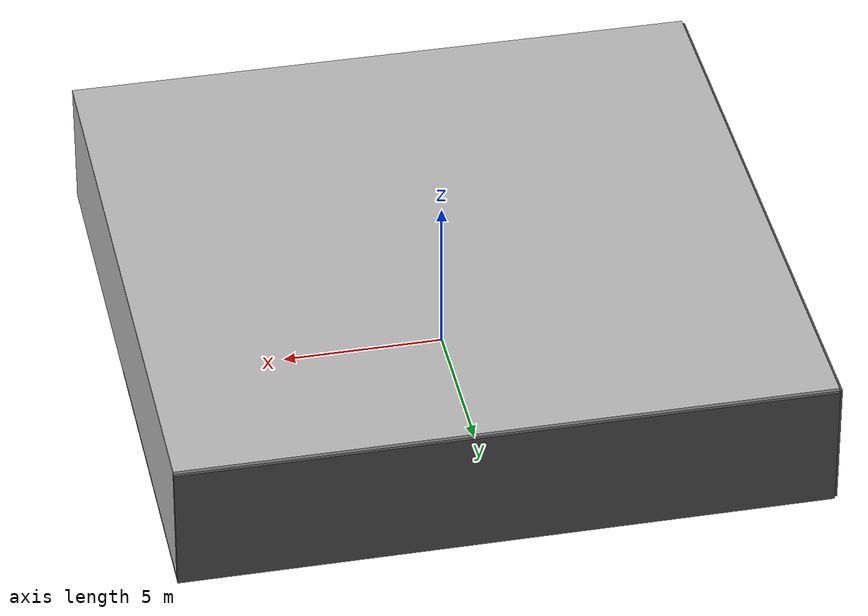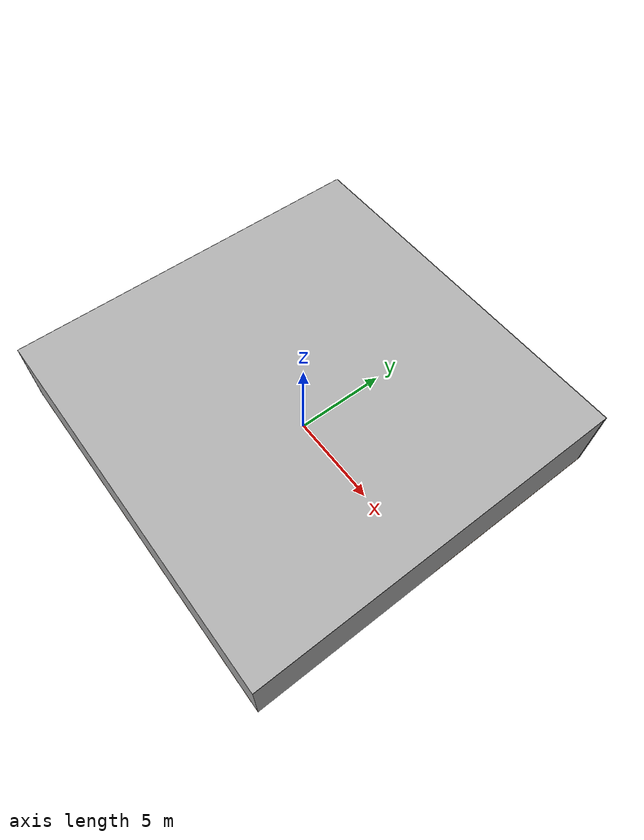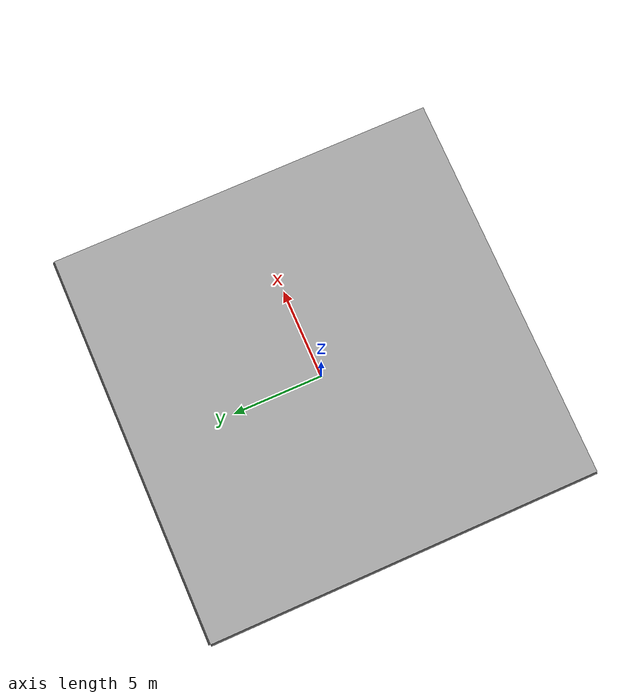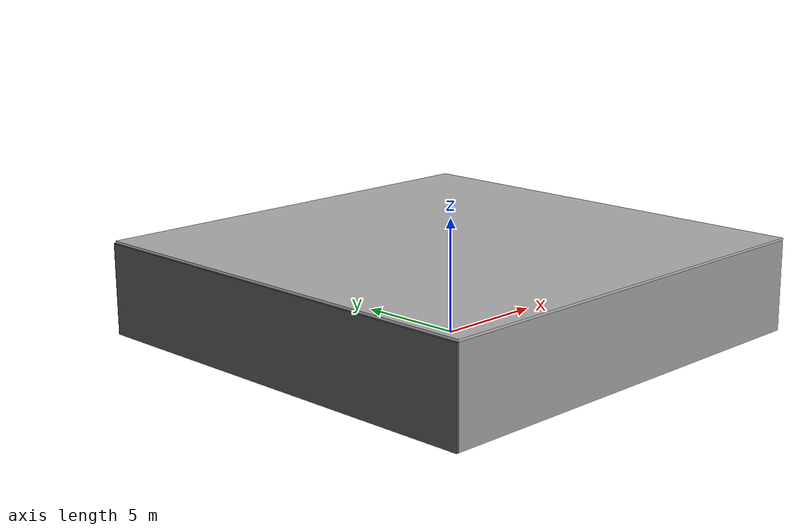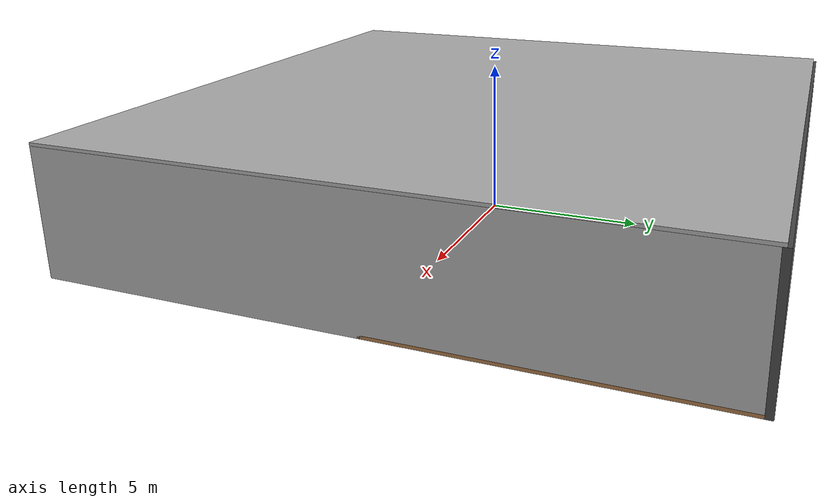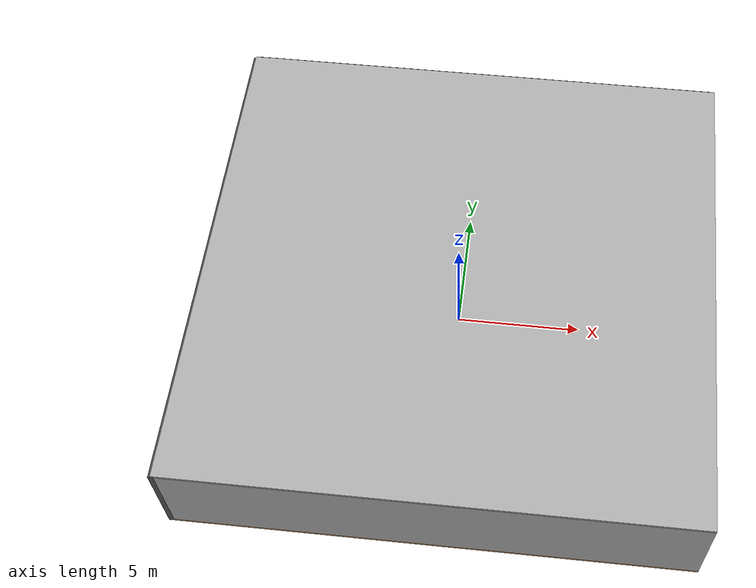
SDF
<sdf version="1.4">
 <world name="default">
  <physics type="ode">
   <max_step_size>0.001</max_step_size>
   <real_time_factor>1</real_time_factor>
   <real_time_update_rate>1000</real_time_update_rate>
   <gravity>0 0 -9.8</gravity>
  </physics>
  <scene><ambient>0.4 0.4 0.4 1</ambient><background>0.7 0.7 0.7 1</background><shadows>1</shadows></scene>
  <model name="Surrounding">
   <static>1</static>
   <link name="Ceiling">
    <collision name="Ceiling_Collision"><geometry><box><size>20 20 0.1</size></box></geometry></collision>
    <visual name="Ceiling_Visual">
     <geometry><box><size>20 20 0.1</size></box></geometry>
     <material>
      <script><uri>file://media/materials/scripts/gazebo.material</uri><name>Gazebo/JointAnchor</name></script>
     </material>
    </visual>
    <pose>0 0 4.05 0 0 0</pose>
   </link>
   <link name="Wall_South">
    <collision name="Wall_South_Collision">
     <geometry><box><size>20 0 4</size></box></geometry>
     <pose>0 0 2 0 -0 0</pose>
    </collision>
    <visual name="Wall_South_Visual">
     <pose>0 0 2 0 -0 0</pose>
     <geometry><box><size>20 0 4</size></box></geometry>
     <material>
      <script><uri>file://media/materials/scripts/gazebo.material</uri><name>Gazebo/GreyGradientSky</name></script>
     </material>
    </visual>
    <velocity_decay><linear>0</linear><angular>0</angular></velocity_decay>
    <pose>0 -10 0 0 -0 0</pose>
   </link>
   <link name="Wall_East">
    <collision name="Wall_21_Collision">
     <geometry><box><size>20 0 4</size></box></geometry>
     <pose>0 0 2 0 -0 0</pose>
    </collision>
    <visual name="Wall_21_Visual">
     <pose>0 0 2 0 -0 0</pose>
     <geometry><box><size>20 0 4</size></box></geometry>
     <material>
      <script><uri>file://media/materials/scripts/gazebo.material</uri><name>Gazebo/CloudySky</name></script>
     </material>
    </visual>
    <velocity_decay><linear>0</linear><angular>0</angular></velocity_decay>
    <pose>10 0 0 0 -0 1.5708</pose>
   </link>
   <link name="Wall_North">
    <collision name="Wall_22_Collision">
     <geometry><box><size>20 0.2 4</size></box></geometry>
     <pose>0 0 2 0 -0 0</pose>
    </collision>
    <visual name="Wall_22_Visual">
     <pose>0 0 2 0 -0 0</pose>
     <geometry><box><size>20 0.2 4</size></box></geometry>
     <material>
      <script><uri>file://media/materials/scripts/gazebo.material</uri><name>Gazebo/Road</name></script>
     </material>
    </visual>
    <velocity_decay><linear>0</linear><angular>0</angular></velocity_decay>
    <pose>0 10 0 0 -0 0</pose>
   </link>
   <link name="Wall_West">
    <collision name="Wall_23_Collision">
     <geometry><box><size>20 0.2 4</size></box></geometry>
     <pose>0 0 2 0 -0 0</pose>
    </collision>
    <visual name="Wall_23_Visual">
     <pose>0 0 2 0 -0 0</pose>
     <geometry><box><size>20 0.2 4</size></box></geometry>
     <material>
      <script><uri>file://media/materials/scripts/gazebo.material</uri><name>Gazebo/Road</name></script>
     </material>
    </visual>
    <velocity_decay><linear>0</linear><angular>0</angular></velocity_decay>
    <pose>-10 0 0 0 0 -1.5708</pose>
   </link>
   <link name="Ground_link">
    <collision name="collision">
     <pose>0 0 .05 0 -0 0</pose>
     <geometry><box><size>20 20 0.1</size></box></geometry>
    </collision>
    <visual name="visual">
     <pose>0 0 .05 0 -0 0</pose>
     <geometry><box><size>20 20 0.1</size></box></geometry>
     <material>
      <script><uri>file://media/materials/scripts/gazebo.material</uri><name>Gazebo/WoodPallet</name></script>
     </material>
    </visual>
   </link>
   <static>1</static>
  </model>
  <spherical_coordinates>
   <surface_model>EARTH_WGS84</surface_model>
   <latitude_deg>0</latitude_deg>
   <longitude_deg>0</longitude_deg>
   <elevation>0</elevation>
   <heading_deg>0</heading_deg>
  </spherical_coordinates>
  <light name="lightball_0" type="diffuse">
   <diffuse>0.8 0.8 0.8 1</diffuse>
   <specular>0.2 0.2 0.2 1</specular>
   <attenuation>
    <range>100</range>
    <constant>0.7</constant>
    <linear>0.01</linear>
    <quadratic>0.001</quadratic>
   </attenuation>
   <direction>-0.5 0.1 -0.9</direction>
   <pose>4.08019401182 8.97578723901 0.636146452002 0 0 0</pose>
  </light>
  <light name="lightball_1" type="diffuse">
   <diffuse>0.8 0.8 0.8 1</diffuse>
   <specular>0.2 0.2 0.2 1</specular>
   <attenuation>
    <range>100</range>
    <constant>0.7</constant>
    <linear>0.01</linear>
    <quadratic>0.001</quadratic>
   </attenuation>
   <direction>-0.5 0.1 -0.9</direction>
   <pose>-8.81848937317 1.65155572006 1.57146043393 0 0 0</pose>
  </light>
  <light name="lightball_2" type="diffuse">
   <diffuse>0.8 0.8 0.8 1</diffuse>
   <specular>0.2 0.2 0.2 1</specular>
   <attenuation>
    <range>100</range>
    <constant>0.7</constant>
    <linear>0.01</linear>
    <quadratic>0.001</quadratic>
   </attenuation>
   <direction>-0.5 0.1 -0.9</direction>
   <pose>8.11431078261 9.27204631554 1.60065144255 0 0 0</pose>
  </light>
  <light name="lightball_3" type="diffuse">
   <diffuse>0.8 0.8 0.8 1</diffuse>
   <specular>0.2 0.2 0.2 1</specular>
   <attenuation>
    <range>100</range>
    <constant>0.7</constant>
    <linear>0.01</linear>
    <quadratic>0.001</quadratic>
   </attenuation>
   <direction>-0.5 0.1 -0.9</direction>
   <pose>9.68934638765 -7.57036128535 2.04335638178 0 0 0</pose>
  </light>
  <light name="lightball_4" type="diffuse">
   <diffuse>0.8 0.8 0.8 1</diffuse>
   <specular>0.2 0.2 0.2 1</specular>
   <attenuation>
    <range>100</range>
    <constant>0.7</constant>
    <linear>0.01</linear>
    <quadratic>0.001</quadratic>
   </attenuation>
   <direction>-0.5 0.1 -0.9</direction>
   <pose>-5.31130191665 3.33928539394 1.96107371181 0 0 0</pose>
  </light>
  <light name="lightball_5" type="diffuse">
   <diffuse>0.8 0.8 0.8 1</diffuse>
   <specular>0.2 0.2 0.2 1</specular>
   <attenuation>
    <range>100</range>
    <constant>0.7</constant>
    <linear>0.01</linear>
    <quadratic>0.001</quadratic>
   </attenuation>
   <direction>-0.5 0.1 -0.9</direction>
   <pose>1.00473902137 -0.430186089786 1.36520727417 0 0 0</pose>
  </light>
  <light name="lightball_6" type="diffuse">
   <diffuse>0.8 0.8 0.8 1</diffuse>
   <specular>0.2 0.2 0.2 1</specular>
   <attenuation>
    <range>100</range>
    <constant>0.7</constant>
    <linear>0.01</linear>
    <quadratic>0.001</quadratic>
   </attenuation>
   <direction>-0.5 0.1 -0.9</direction>
   <pose>-4.34697884499 -3.11544205527 3.18490376579 0 0 0</pose>
  </light>
  <light name="lightball_7" type="diffuse">
   <diffuse>0.8 0.8 0.8 1</diffuse>
   <specular>0.2 0.2 0.2 1</specular>
   <attenuation>
    <range>100</range>
    <constant>0.7</constant>
    <linear>0.01</linear>
    <quadratic>0.001</quadratic>
   </attenuation>
   <direction>-0.5 0.1 -0.9</direction>
   <pose>-2.54446920538 4.35021330369 1.85568887762 0 0 0</pose>
  </light>
  <light name="lightball_8" type="diffuse">
   <diffuse>0.8 0.8 0.8 1</diffuse>
   <specular>0.2 0.2 0.2 1</specular>
   <attenuation>
    <range>100</range>
    <constant>0.7</constant>
    <linear>0.01</linear>
    <quadratic>0.001</quadratic>
   </attenuation>
   <direction>-0.5 0.1 -0.9</direction>
   <pose>-8.06395197527 2.34090233604 1.3737534822 0 0 0</pose>
  </light>
  <light name="lightball_9" type="diffuse">
   <diffuse>0.8 0.8 0.8 1</diffuse>
   <specular>0.2 0.2 0.2 1</specular>
   <attenuation>
    <range>100</range>
    <constant>0.7</constant>
    <linear>0.01</linear>
    <quadratic>0.001</quadratic>
   </attenuation>
   <direction>-0.5 0.1 -0.9</direction>
   <pose>-1.5153428079 5.28368331296 2.36147956115 0 0 0</pose>
  </light>
  <light name="lightball_10" type="diffuse">
   <diffuse>0.8 0.8 0.8 1</diffuse>
   <specular>0.2 0.2 0.2 1</specular>
   <attenuation>
    <range>100</range>
    <constant>0.7</constant>
    <linear>0.01</linear>
    <quadratic>0.001</quadratic>
   </attenuation>
   <direction>-0.5 0.1 -0.9</direction>
   <pose>-7.70621792292 -9.26572748076 1.75031553047 0 0 0</pose>
  </light>
  <light name="lightball_11" type="diffuse">
   <diffuse>0.8 0.8 0.8 1</diffuse>
   <specular>0.2 0.2 0.2 1</specular>
   <attenuation>
    <range>100</range>
    <constant>0.7</constant>
    <linear>0.01</linear>
    <quadratic>0.001</quadratic>
   </attenuation>
   <direction>-0.5 0.1 -0.9</direction>
   <pose>-2.08842320179 4.85338940854 2.28468645555 0 0 0</pose>
  </light>
  <light name="lightball_12" type="diffuse">
   <diffuse>0.8 0.8 0.8 1</diffuse>
   <specular>0.2 0.2 0.2 1</specular>
   <attenuation>
    <range>100</range>
    <constant>0.7</constant>
    <linear>0.01</linear>
    <quadratic>0.001</quadratic>
   </attenuation>
   <direction>-0.5 0.1 -0.9</direction>
   <pose>-2.43611010272 5.86788000685 1.12666445354 0 0 0</pose>
  </light>
  <include>
   <uri>model://robocup_3Dsim_goal</uri>
   <pose>0.53957762191 -7.96426523246 0 0 0 1.63026932499</pose>
  </include>
  <include><uri>model://table</uri><pose>5.49678685826 -5.08917392867 0 0 0 2.12137695484</pose></include>
  <include>
   <uri>model://robocup_3Dsim_goal</uri>
   <pose>4.81651949481 -1.14237599146 0 0 0 0.524576936696</pose>
  </include>
  <include>
   <uri>model://textured_shapes</uri>
   <pose>4.92636595845 3.35608890452 0 0 0 0.0329941148512</pose>
  </include>
 </world>
</sdf>

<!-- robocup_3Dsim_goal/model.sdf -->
<sdf version="1.5">
  <model name="robocup_3d_goal">
    <static>true</static>
    <link name="left_post">
      <pose>0 1.05 0.45 0 0 0</pose>
      <collision name="collision">
        <geometry>
          <cylinder>
            <radius>0.05</radius>
            <length>0.9</length>
          </cylinder>
        </geometry>
      </collision>
      <visual name="visual">
        <geometry>
          <cylinder>
            <radius>0.05</radius>
            <length>0.9</length>
          </cylinder>
        </geometry>
        <material>
          <script>
            <uri>file://media/materials/scripts/gazebo.material</uri>
            <name>Gazebo/ZincYellow</name>
          </script>
        </material>
      </visual>
    </link>
    <link name="left_support_horiz_lower">
      <pose>0.30 1.05 0.01 0 0 0</pose>
      <collision name="collision">
        <geometry>
          <box>
            <size>0.50 0.02 0.02</size>
          </box>
        </geometry>
      </collision>
      <visual name="visual">
        <geometry>
          <box>
            <size>0.50 0.02 0.02</size>
          </box>
        </geometry>
        <material>
          <script>
            <uri>file://media/materials/scripts/gazebo.material</uri>
            <name>Gazebo/White</name>
          </script>
        </material>
      </visual>
    </link>
    <link name="left_support_horiz_upper">
      <pose>0.30 1.05 0.79 0 0 0</pose>
      <collision name="collision">
        <geometry>
          <box>
            <size>0.50 0.02 0.02</size>
          </box>
        </geometry>
      </collision>
      <visual name="visual">
        <geometry>
          <box>
            <size>0.50 0.02 0.02</size>
          </box>
        </geometry>
        <material>
          <script>
            <uri>file://media/materials/scripts/gazebo.material</uri>
            <name>Gazebo/White</name>
          </script>
        </material>
      </visual>
    </link>
    <link name="left_support_vertical">
      <pose>0.56 1.05 0.4 0 1.5708 0</pose>
      <collision name="collision">
        <geometry>
          <box>
            <size>0.80 0.02 0.02</size>
          </box>
        </geometry>
      </collision>
      <visual name="visual">
        <geometry>
          <box>
            <size>0.80 0.02 0.02</size>
          </box>
        </geometry>
        <material>
          <script>
            <uri>file://media/materials/scripts/gazebo.material</uri>
            <name>Gazebo/White</name>
          </script>
        </material>
      </visual>
    </link>
    <link name="right_support_horiz_lower">
      <pose>0.30 -1.05 0.01 0 0 0</pose>
      <collision name="collision">
        <geometry>
          <box>
            <size>0.50 0.02 0.02</size>
          </box>
        </geometry>
      </collision>
      <visual name="visual">
        <geometry>
          <box>
            <size>0.50 0.02 0.02</size>
          </box>
        </geometry>
        <material>
          <script>
            <uri>file://media/materials/scripts/gazebo.material</uri>
            <name>Gazebo/White</name>
          </script>
        </material>
      </visual>
    </link>
    <link name="right_support_horiz_upper">
      <pose>0.30 -1.05 0.79 0 0 0</pose>
      <collision name="collision">
        <geometry>
          <box>
            <size>0.50 0.02 0.02</size>
          </box>
        </geometry>
      </collision>
      <visual name="visual">
        <geometry>
          <box>
            <size>0.50 0.02 0.02</size>
          </box>
        </geometry>
        <material>
          <script>
            <uri>file://media/materials/scripts/gazebo.material</uri>
            <name>Gazebo/White</name>
          </script>
        </material>
      </visual>
    </link>
    <link name="right_support_vertical">
      <pose>0.56 -1.05 0.4 0 1.5708 0</pose>
      <collision name="collision">
        <geometry>
          <box>
            <size>0.80 0.02 0.02</size>
          </box>
        </geometry>
      </collision>
      <visual name="visual">
        <geometry>
          <box>
            <size>0.80 0.02 0.02</size>
          </box>
        </geometry>
        <material>
          <script>
            <uri>file://media/materials/scripts/gazebo.material</uri>
            <name>Gazebo/White</name>
          </script>
        </material>
      </visual>
    </link>
    <link name="center_support_horiz_lower">
      <pose>0.56 0 0.01 0 1.5708 0</pose>
      <collision name="collision">
        <geometry>
          <box>
            <size>0.02 2.08 0.02</size>
          </box>
        </geometry>
      </collision>
      <visual name="visual">
        <geometry>
          <box>
            <size>0.02 2.08 0.02</size>
          </box>
        </geometry>
        <material>
          <script>
            <uri>file://media/materials/scripts/gazebo.material</uri>
            <name>Gazebo/White</name>
          </script>
        </material>
      </visual>
    </link>
    <link name="center_support_horiz_upper">
      <pose>0.56 0 0.79 0 1.5708 0</pose>
      <collision name="collision">
        <geometry>
          <box>
            <size>0.02 2.08 0.02</size>
          </box>
        </geometry>
      </collision>
      <visual name="visual">
        <geometry>
          <box>
            <size>0.02 2.08 0.02</size>
          </box>
        </geometry>
        <material>
          <script>
            <uri>file://media/materials/scripts/gazebo.material</uri>
            <name>Gazebo/White</name>
          </script>
        </material>
      </visual>
    </link>
    <link name="right_post">
      <pose>0 -1.05 0.45 0 0 0</pose>
      <collision name="collision">
        <geometry>
          <cylinder>
            <radius>0.05</radius>
            <length>0.9</length>
          </cylinder>
        </geometry>
      </collision>
      <visual name="visual">
        <geometry>
          <cylinder>
            <radius>0.05</radius>
            <length>0.9</length>
          </cylinder>
        </geometry>
        <material>
          <script>
            <uri>file://media/materials/scripts/gazebo.material</uri>
            <name>Gazebo/ZincYellow</name>
          </script>
        </material>
      </visual>
    </link>
    <link name="crossbar">
      <pose>0 0 0.85 1.57 1.57 0</pose>
      <collision name="collision">
        <geometry>
          <cylinder>
            <radius>0.05</radius>
            <length>2.0</length>
          </cylinder>
        </geometry>
      </collision>
      <visual name="visual">
        <geometry>
          <cylinder>
            <radius>0.05</radius>
            <length>2.0</length>
          </cylinder>
        </geometry>
        <material>
          <script>
            <uri>file://media/materials/scripts/gazebo.material</uri>
            <name>Gazebo/ZincYellow</name>
          </script>
        </material>
      </visual>
    </link>
    <link name="center_net">
      <pose>0.56 0 0.40 0 0 0</pose>
      <collision name="collision">
        <geometry>
          <box>
            <size>0.01 2.1 0.80</size>
          </box>
        </geometry>
      </collision>
      <visual name="visual">
        <geometry>
          <box>
            <size>0.01 2.1 0.80</size>
          </box>
        </geometry>
        <material>
          <script>
            <uri>model://../model_source/models/robocup09_spl_field/materials/scripts/</uri>
            <uri>model://../model_source/models/robocup09_spl_field/materials/textures/</uri>
            <name>RoboCup/Net</name>
          </script>
        </material>
      </visual>
    </link>
    <link name="left_net">
      <pose>0.30 1.05 0.40 0 0 0</pose>
      <collision name="collision">
        <geometry>
          <box>
            <size>0.50 0.01 0.76</size>
          </box>
        </geometry>
      </collision>
      <visual name="visual">
        <geometry>
          <box>
            <size>0.50 0.01 0.76</size>
          </box>
        </geometry>
        <material>
          <script>
            <uri>model://../model_source/models/robocup09_spl_field/materials/scripts/</uri>
            <uri>model://../model_source/models/robocup09_spl_field/materials/textures/</uri>
            <name>RoboCup/Net</name>
          </script>
        </material>
      </visual>
    </link>
    <link name="right_net">
      <pose>0.30 -1.05 0.40 0 0 0</pose>
      <collision name="collision">
        <geometry>
          <box>
            <size>0.50 0.01 0.76</size>
          </box>
        </geometry>
      </collision>
      <visual name="visual">
        <geometry>
          <box>
            <size>0.50 0.01 0.76</size>
          </box>
        </geometry>
        <material>
          <script>
            <uri>model://../model_source/models/robocup09_spl_field/materials/scripts/</uri>
            <uri>model://../model_source/models/robocup09_spl_field/materials/textures/</uri>
            <name>RoboCup/Net</name>
          </script>
        </material>
      </visual>
    </link>
  </model>
</sdf>

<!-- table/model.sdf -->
<sdf version="1.5">
  <model name="table">
    <static>true</static>
    <link name="link">
      <collision name="surface">
        <pose>0 0 1.0 0 0 0</pose>
        <geometry>
          <box>
            <size>1.5 0.8 0.03</size>
          </box>
        </geometry>
        <surface>
          <friction>
            <ode>
              <mu>0.6</mu>
              <mu2>0.6</mu2>
            </ode>
          </friction>
        </surface>
      </collision>
      <visual name="visual1">
        <pose>0 0 1.0 0 0 0</pose>
        <geometry>
          <box>
            <size>1.5 0.8 0.03</size>
          </box>
        </geometry>
        <material>
          <script>
            <uri>model://media/materials/scripts/gazebo.material</uri>
            <name>Gazebo/Wood</name>
          </script>
        </material>
      </visual>
      <collision name="front_left_leg">
        <pose>0.68 0.38 0.5 0 0 0</pose>
        <geometry>
          <cylinder>
            <radius>0.02</radius>
            <length>1.0</length>
          </cylinder>
        </geometry>
      </collision>
      <visual name="front_left_leg">
        <pose>0.68 0.38 0.5 0 0 0</pose>
        <geometry>
          <cylinder>
            <radius>0.02</radius>
            <length>1.0</length>
          </cylinder>
        </geometry>
        <material>
          <script>
            <uri>model://media/materials/scripts/gazebo.material</uri>
            <name>Gazebo/Grey</name>
          </script>
        </material>
      </visual>
      <collision name="front_right_leg">
        <pose>0.68 -0.38 0.5 0 0 0</pose>
        <geometry>
          <cylinder>
            <radius>0.02</radius>
            <length>1.0</length>
          </cylinder>
        </geometry>
      </collision>
      <visual name="front_right_leg">
        <pose>0.68 -0.38 0.5 0 0 0</pose>
        <geometry>
          <cylinder>
            <radius>0.02</radius>
            <length>1.0</length>
          </cylinder>
        </geometry>
        <material>
          <script>
            <uri>model://media/materials/scripts/gazebo.material</uri>
            <name>Gazebo/Grey</name>
          </script>
        </material>
      </visual>
      <collision name="back_right_leg">
        <pose>-0.68 -0.38 0.5 0 0 0</pose>
        <geometry>
          <cylinder>
            <radius>0.02</radius>
            <length>1.0</length>
          </cylinder>
        </geometry>
      </collision>
      <visual name="back_right_leg">
        <pose>-0.68 -0.38 0.5 0 0 0</pose>
        <geometry>
          <cylinder>
            <radius>0.02</radius>
            <length>1.0</length>
          </cylinder>
        </geometry>
        <material>
          <script>
            <uri>model://media/materials/scripts/gazebo.material</uri>
            <name>Gazebo/Grey</name>
          </script>
        </material>
      </visual>
      <collision name="back_left_leg">
        <pose>-0.68 0.38 0.5 0 0 0</pose>
        <geometry>
          <cylinder>
            <radius>0.02</radius>
            <length>1.0</length>
          </cylinder>
        </geometry>
      </collision>
      <visual name="back_left_leg">
        <pose>-0.68 0.38 0.5 0 0 0</pose>
        <geometry>
          <cylinder>
            <radius>0.02</radius>
            <length>1.0</length>
          </cylinder>
        </geometry>
        <material>
          <script>
            <uri>model://media/materials/scripts/gazebo.material</uri>
            <name>Gazebo/Grey</name>
          </script>
        </material>
      </visual>
    </link>
  </model>
</sdf>

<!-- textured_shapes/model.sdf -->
<sdf version="1.6">
  <model name="textured_shapes">
    <pose>0 0 0.5 0 0 0</pose>
    <link name="box">
      <pose>0 -1.5 0 0 0 0</pose>
      <collision name="collision">
        <geometry>
          <box>
            <size>1 1 1</size>
          </box>
        </geometry>
      </collision>
      <visual name="visual">
        <geometry>
          <box>
            <size>1 1 1</size>
          </box>
        </geometry>
        <material>
          <script>
            <uri>model://../model_source/models/textured_shapes/materials/scripts</uri>
            <uri>model://../model_source/models/textured_shapes/materials/textures</uri>
            <name>TexturedShape/Squares</name>
          </script>
        </material>
      </visual>
    </link>
    <link name="sphere">
      <collision name="collision">
        <geometry>
          <sphere>
            <radius>0.5</radius>
          </sphere>
        </geometry>
      </collision>
      <visual name="visual">
        <geometry>
          <sphere>
            <radius>0.5</radius>
          </sphere>
        </geometry>
        <material>
          <script>
            <uri>model://../model_source/models/textured_shapes/materials/scripts</uri>
            <uri>model://../model_source/models/textured_shapes/materials/textures</uri>
            <name>TexturedShape/Squares</name>
          </script>
        </material>
      </visual>
    </link>
    <link name="cylinder">
      <pose>0 1.5 0 0 0 0</pose>
      <collision name="collision">
        <geometry>
          <cylinder>
            <radius>0.5</radius>
            <length>1</length>
          </cylinder>
        </geometry>
      </collision>
      <visual name="visual">
        <geometry>
          <cylinder>
            <radius>0.5</radius>
            <length>1</length>
          </cylinder>
        </geometry>
        <material>
          <script>
            <uri>model://../model_source/models/textured_shapes/materials/scripts</uri>
            <uri>model://../model_source/models/textured_shapes/materials/textures</uri>
            <name>TexturedShape/Squares</name>
          </script>
        </material>
      </visual>
    </link>
  </model>
</sdf>
